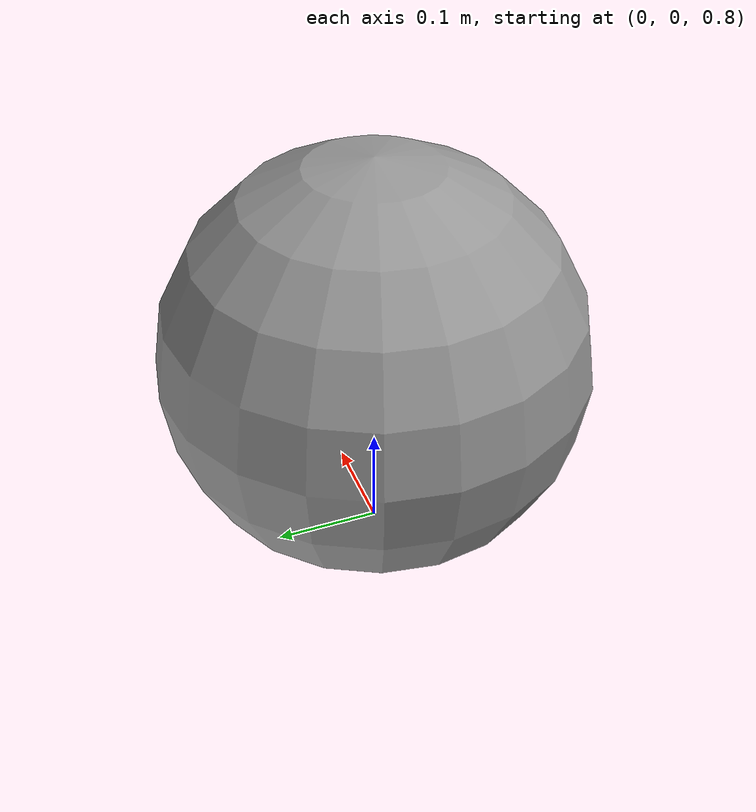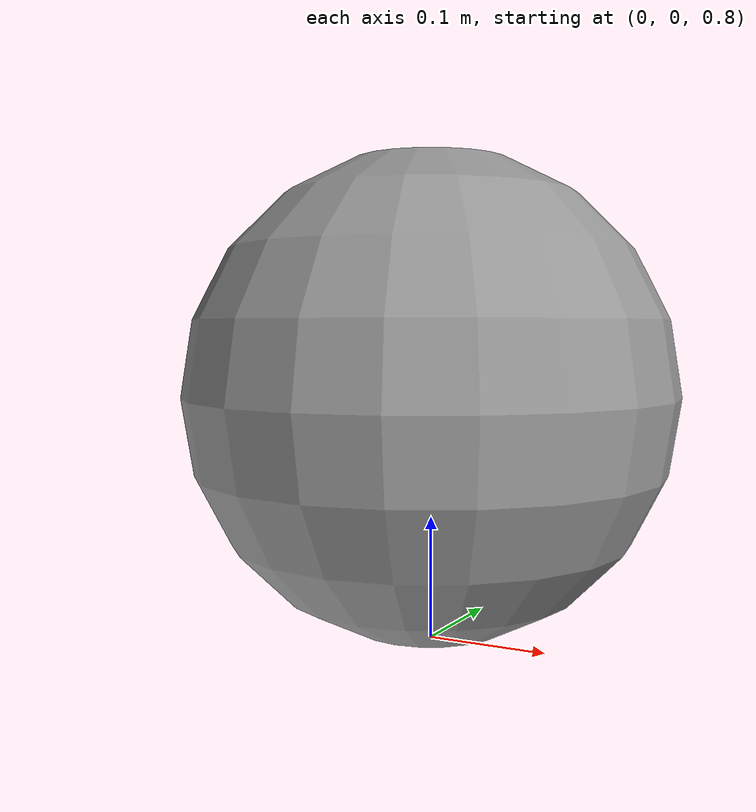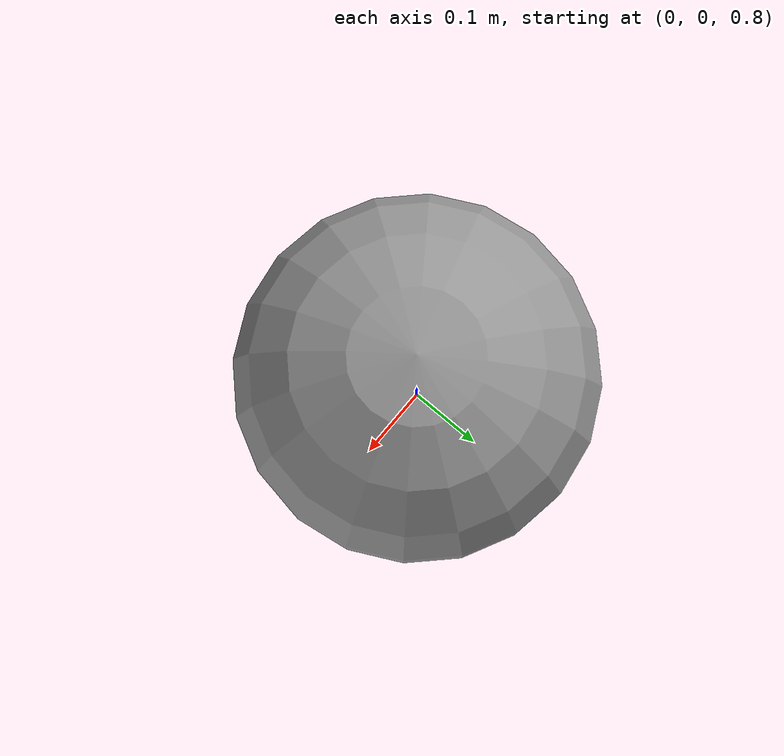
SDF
<?xml version='1.0'?>
<sdf version='1.6'>
  <model name='volleyball'>
    <link name='link_0'>
      <inertial>
        <mass>0.02</mass>
        <inertia>
          <ixx>0.083</ixx>
          <ixy>0</ixy>
          <ixz>0</ixz>
          <iyy>0.083</iyy>
          <iyz>0</iyz>
          <izz>0.083</izz>
        </inertia>
        <pose frame=''>0 0 1 0 -0 0</pose>
      </inertial>
      <gravity>1</gravity>
      <self_collide>0</self_collide>
      <kinematic>0</kinematic>
      <visual name='visual'>
        <pose frame=''>0 0 1 0 -0 0</pose>
        <geometry>
          <sphere>
            <radius>0.2</radius>
          </sphere>
        </geometry>
        <material>
          <lighting>1</lighting>
          <script>
            <uri>file://media/materials/scripts/gazebo.material</uri>
            <name>Gazebo/Grey</name>
          </script>
          <ambient>0.3 0.3 0.3 1</ambient>
          <diffuse>0.7 0.7 0.7 1</diffuse>
          <specular>0.01 0.01 0.01 1</specular>
          <emissive>0 0 0 1</emissive>
          <shader type='vertex'>
            <normal_map>__default__</normal_map>
          </shader>
        </material>
        <cast_shadows>1</cast_shadows>
        <transparency>0</transparency>
      </visual>
      <collision name='collision'>
        <laser_retro>0</laser_retro>
        <max_contacts>10</max_contacts>
        <pose frame=''>0 0 1 0 -0 0</pose>
        <geometry>
          <sphere>
            <radius>0.2</radius>
          </sphere>
        </geometry>
        <surface>
          <friction>
            <ode>
              <mu>0.01</mu>
              <mu2>0.01</mu2>
              <fdir1>0 0 0</fdir1>
              <slip1>0</slip1>
              <slip2>0</slip2>
            </ode>
            <torsional>
              <coefficient>1</coefficient>
              <patch_radius>0</patch_radius>
              <surface_radius>0</surface_radius>
              <use_patch_radius>1</use_patch_radius>
              <ode>
                <slip>0</slip>
              </ode>
            </torsional>
          </friction>
          <bounce>
            <restitution_coefficient>1</restitution_coefficient>
            <threshold>0.5</threshold>
          </bounce>
          <contact>
            <collide_without_contact_bitmask>1</collide_without_contact_bitmask>
            <collide_bitmask>1</collide_bitmask>
	    <elastic_modulus>0</elastic_modulus>
            <ode>
              <soft_cfm>0</soft_cfm>
              <soft_erp>0.2</soft_erp>
              <kp>1e+13</kp>
              <kd>1</kd>
              <max_vel>30</max_vel>
              <min_depth>0</min_depth>
            </ode>
            <bullet>
              <split_impulse>1</split_impulse>
              <split_impulse_penetration_threshold>-0.01</split_impulse_penetration_threshold>
              <soft_cfm>0</soft_cfm>
              <soft_erp>0.2</soft_erp>
              <kp>1e+13</kp>
              <kd>1</kd>
            </bullet>
          </contact>
        </surface>
      </collision>
	 <sensor name="ball_sensor" type="contact">
      <always_on>true</always_on>
      <update_rate>30.0</update_rate>
      <contact>
       <collision>collision</collision>
      </contact>
       <plugin name="ball_bumper" filename="libgazebo_ros_bumper.so">
        <bumperTopicName>ball_contact_sensor_state</bumperTopicName>
        <frameName>link_0</frameName>
       </plugin>
     </sensor>
    </link>
    <static>0</static>
    <allow_auto_disable>1</allow_auto_disable>
   <plugin name="BuoyancyPlugin" filename="libBuoyancyPlugin.so">
     <!-- a viscous liquid -->
     <fluid_density>1.29</fluid_density>
     <link name="link_0">
       <center_of_volume>0 0 0</center_of_volume>
       <volume>0.013</volume>
    </link>
   </plugin>
  </model>
</sdf>
